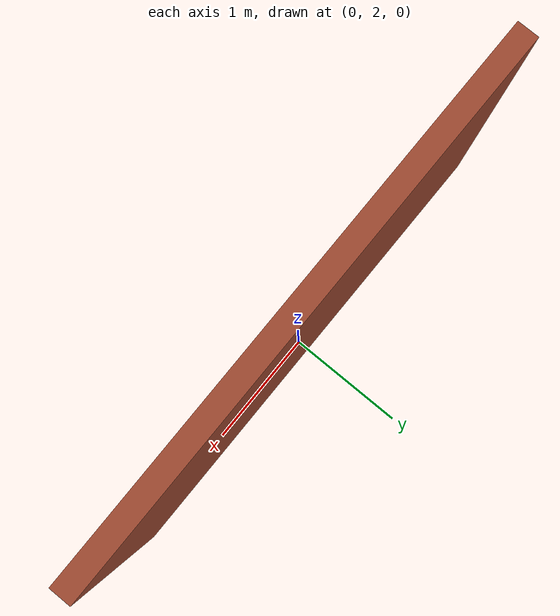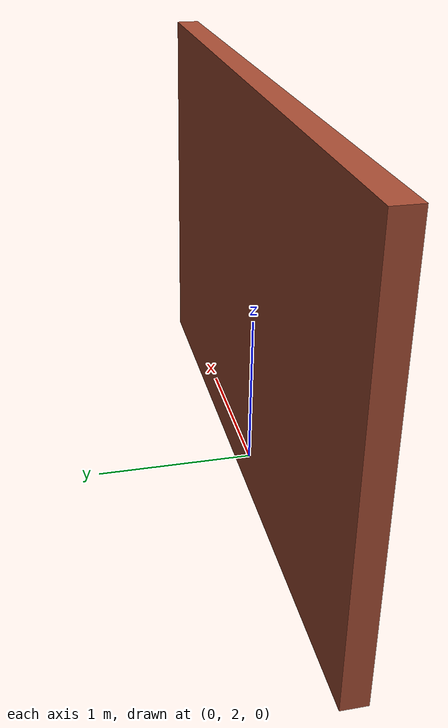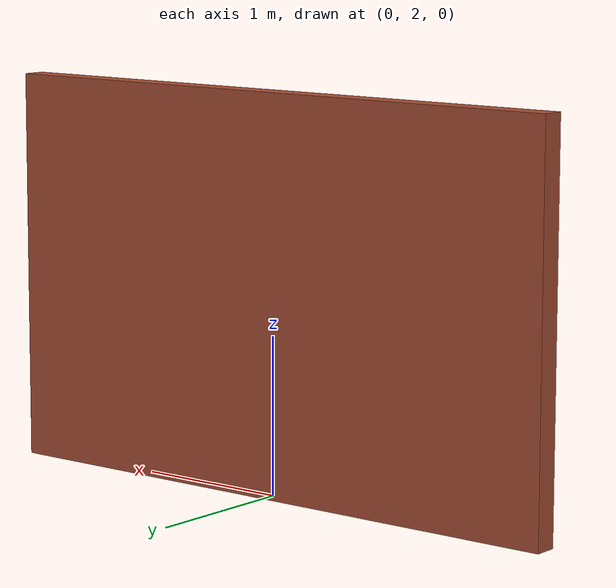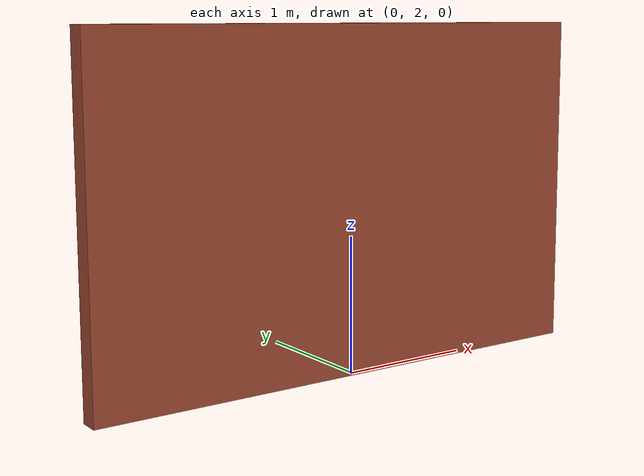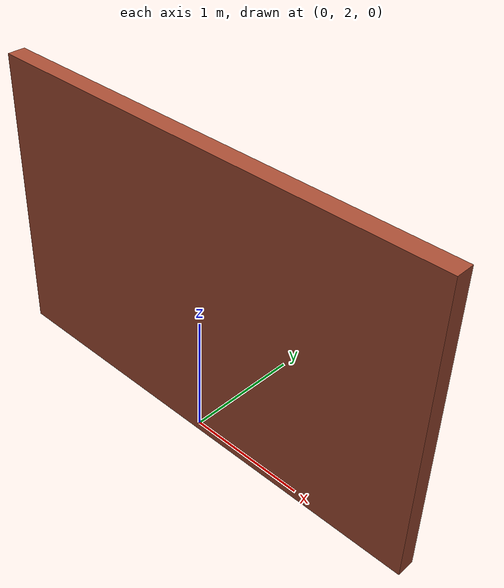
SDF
<?xml version='1.0'?>
<sdf version='1.6'>
  <model name='wall_high_fric'>
    <pose frame=''>-0.015 2.02 0 0 -0 0</pose>
    <link name='Wall_0'>
      <collision name='Wall_0_Collision'>
        <geometry>
          <box>
            <size>4 0.15 2.5</size>
          </box>
        </geometry>
        <pose frame=''>0 0 1.25 0 -0 0</pose>
        <surface>
          <friction>
            <ode>
              <mu> 0.8 </mu>
              <mu2> 0.8 </mu2>
            </ode>
          </friction>
        </surface>
      </collision>
      <visual name='Wall_0_Visual'>
        <pose frame=''>0 0 1.25 0 -0 0</pose>
        <geometry>
          <box>
            <size>4 0.15 2.5</size>
          </box>
        </geometry>
        <material>
          <script>
            <uri>file://media/materials/scripts/gazebo.material</uri>
            <name>Gazebo/Bricks</name>
          </script>
          <ambient>1 1 1 1</ambient>
        </material>
        <meta>
          <layer>0</layer>
        </meta>
      </visual>
      <pose frame=''>0 0 0 0 -0 0</pose>
    </link>
    <static>1</static>
  </model>
</sdf>
